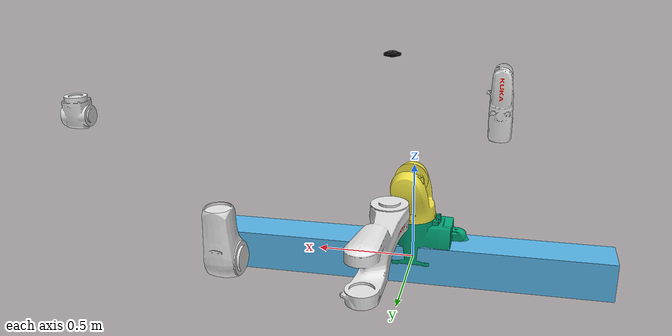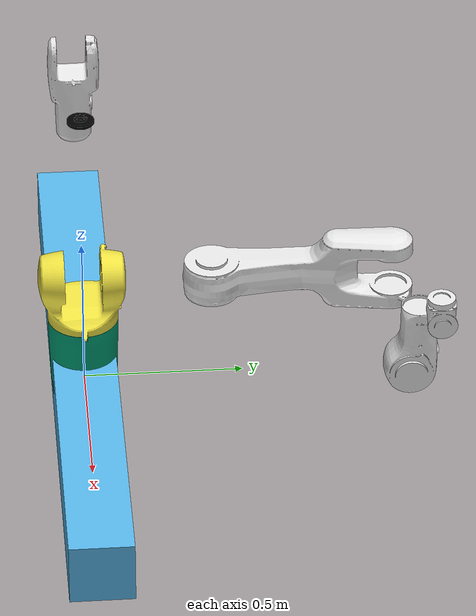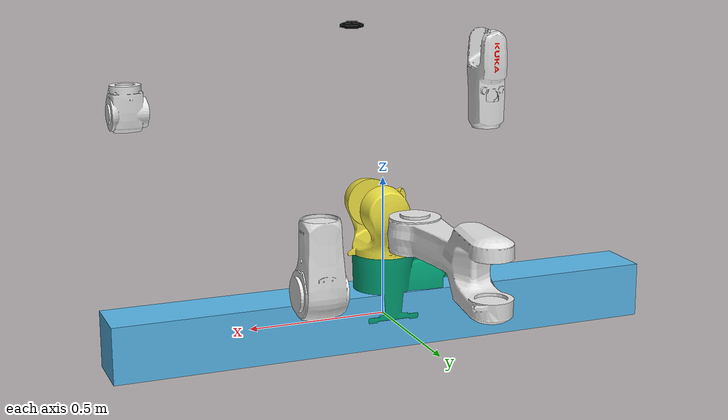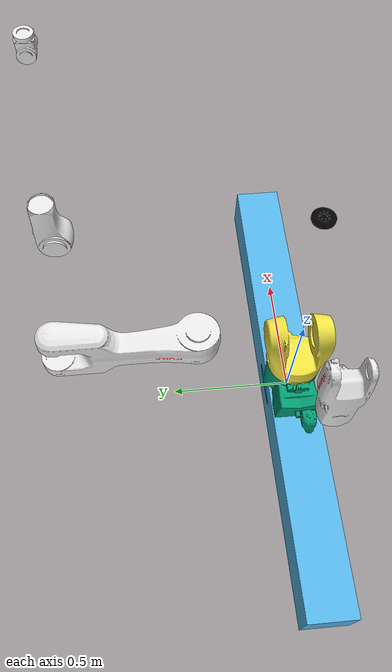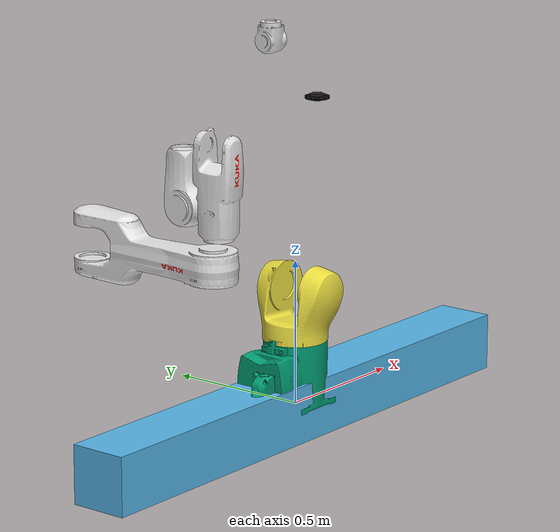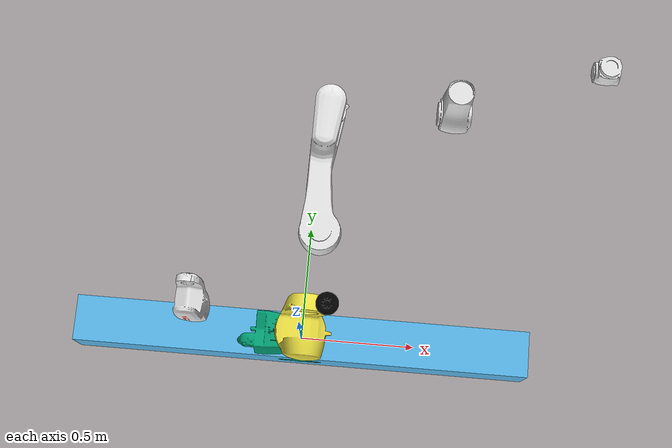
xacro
<?xml version="1.0"?>
<robot xmlns:xacro="http://www.ros.org/wiki/xacro" name="kr10_r1100_2_with_dummy_rail">
  <!-- Import urdf file  -->
  <xacro:include filename="$(find kuka_agilus_support)/urdf/kr10_r1100_2_macro.xacro"/>
  <xacro:include filename="$(find kuka_agilus_support)/urdf/kr_agilus_ros2_control_macro.xacro"/>
  <xacro:include filename="$(find ext_axis_examples)/urdf/dummy_rail.xacro"/>
  <!-- Read additional arguments  -->
  <xacro:arg name="driver_version" default="rsi_only"/>
  <xacro:arg name="mode" default="hardware"/>
  <xacro:arg name="use_gpio" default="false"/>
  <xacro:arg name="roundtrip_time" default="0"/>
  <xacro:arg name="client_ip" default="0.0.0.0"/>
  <xacro:arg name="client_port" default="59152"/>
  <xacro:arg name="controller_ip" default="0.0.0.0"/>
  <xacro:arg name="verify_robot_model" default="true"/>
  <xacro:arg name="prefix" default=""/>
  <xacro:arg name="x" default="0"/>
  <xacro:arg name="y" default="0"/>
  <xacro:arg name="z" default="0"/>
  <xacro:arg name="roll" default="0"/>
  <xacro:arg name="pitch" default="0"/>
  <xacro:arg name="yaw" default="0"/>
  <xacro:kuka_agilus_ros2_control name="$(arg prefix)kr10_r1100_2_with_dummy_rail" driver_version="$(arg driver_version)" client_ip="$(arg client_ip)" client_port="$(arg client_port)" controller_ip="$(arg controller_ip)" prefix="$(arg prefix)" mode="$(arg mode)" use_gpio="$(arg use_gpio)" roundtrip_time="$(arg roundtrip_time)" verify_robot_model="$(arg verify_robot_model)">
    <ext_axes_ros2_control_joints>
      <xacro:dummy_rail_ros2_control_joints/>
    </ext_axes_ros2_control_joints>
  </xacro:kuka_agilus_ros2_control>
  <!-- world link -->
  <link name="world"/>
  <!-- dummy rail links -->
  <xacro:dummy_rail_links/>
  <xacro:kuka_kr10_r1100_2_robot prefix="$(arg prefix)" package_name="kuka_agilus_support"/>
  <!-- dummy rail joints -->
  <xacro:dummy_rail_joints robot_base_link="$(arg prefix)base_link">
    <origin xyz="$(arg x) $(arg y) $(arg z)" rpy="$(arg roll) $(arg pitch) $(arg yaw)"/>
  </xacro:dummy_rail_joints>
</robot>

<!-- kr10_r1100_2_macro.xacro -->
<robot xmlns:xacro="http://www.ros.org/wiki/xacro" name="kr10_r1100_2">
  <!-- include helper xacros -->
  <xacro:include filename="$(find kuka_resources)/urdf/common_materials.xacro"/>
  <xacro:macro name="kuka_kr10_r1100_2_robot" params="prefix package_name">
    <!-- links - main serial chain -->
    <link name="${prefix}base_link">
      <collision>
        <geometry>
          <mesh filename="package://${package_name}/meshes/kr10_r1100_2/collision/base_link.stl"/>
        </geometry>
        <origin rpy="-0.0 0.0 -0.0" xyz="0.0 0.0 0.0"/>
      </collision>
      <inertial>
        <inertia ixx="0.16209200415615" ixy="0.0" ixz="0.0" iyy="0.10881181598555635" iyz="0.0" izz="0.18461591505869543"/>
        <mass value="1.6916E1"/>
        <origin rpy="1.6165592773339865 -1.221289277333065 3.10031147437779" xyz="-0.03713348309292976 2.6602033577676952E-5 0.10863850792149446"/>
      </inertial>
      <visual>
        <geometry>
          <mesh filename="package://${package_name}/meshes/kr10_r1100_2/visual/base_link.stl"/>
        </geometry>
        <origin rpy="-0.0 0.0 -0.0" xyz="0.0 0.0 0.0"/>
        <xacro:material_kuka_ral_pure_white/>
      </visual>
    </link>
    <link name="${prefix}link_1">
      <collision>
        <geometry>
          <mesh filename="package://${package_name}/meshes/kr10_r1100_2/collision/link_1.stl"/>
        </geometry>
        <origin rpy="-0.0 0.0 -0.0" xyz="0.0 0.0 0.0"/>
      </collision>
      <inertial>
        <inertia ixx="0.07406183855390855" ixy="0.0" ixz="0.0" iyy="0.0890478351825312" iyz="0.0" izz="0.11039570662759429"/>
        <mass value="8.4159999999999986E0"/>
        <origin rpy="1.304519343134156 -0.9428616016893947 -1.4226510948637578" xyz="0.006410408745247152 -0.01626805370722434 -0.10658893773764262"/>
      </inertial>
      <visual>
        <geometry>
          <mesh filename="package://${package_name}/meshes/kr10_r1100_2/visual/link_1.stl"/>
        </geometry>
        <origin rpy="-0.0 0.0 -0.0" xyz="0.0 0.0 0.0"/>
        <xacro:material_kuka_ral_pure_white/>
      </visual>
    </link>
    <link name="${prefix}link_2">
      <collision>
        <geometry>
          <mesh filename="package://${package_name}/meshes/kr10_r1100_2/collision/link_2.stl"/>
        </geometry>
        <origin rpy="-0.0 0.0 -0.0" xyz="0.0 0.0 0.0"/>
      </collision>
      <inertial>
        <inertia ixx="0.8751595055066254" ixy="0.0" ixz="0.0" iyy="0.09215049446198915" iyz="0.0" izz="0.9157117764876721"/>
        <mass value="1.78369E1"/>
        <origin rpy="1.9524873827550635 -1.5422358773344043 -0.3902815673307173" xyz="0.191160133767639 -0.004651344123698628 -0.07520541854245974"/>
      </inertial>
      <visual>
        <geometry>
          <mesh filename="package://${package_name}/meshes/kr10_r1100_2/visual/link_2.stl"/>
        </geometry>
        <origin rpy="-0.0 0.0 -0.0" xyz="0.0 0.0 0.0"/>
        <xacro:material_kuka_ral_pure_white/>
      </visual>
    </link>
    <link name="${prefix}link_3">
      <collision>
        <geometry>
          <mesh filename="package://${package_name}/meshes/kr10_r1100_2/collision/link_3.stl"/>
        </geometry>
        <origin rpy="-0.0 0.0 -0.0" xyz="0.0 0.0 0.0"/>
      </collision>
      <inertial>
        <inertia ixx="0.04469381119929391" ixy="0.0" ixz="0.0" iyy="0.018969508933922696" iyz="0.0" izz="0.0498412586885908"/>
        <mass value="6.075E0"/>
        <origin rpy="-2.676930368410595 -1.321895859309871 1.1860920267202666" xyz="0.04386106995884774 -0.012506995884773664 -0.06825142386831277"/>
      </inertial>
      <visual>
        <geometry>
          <mesh filename="package://${package_name}/meshes/kr10_r1100_2/visual/link_3.stl"/>
        </geometry>
        <origin rpy="-0.0 0.0 -0.0" xyz="0.0 0.0 0.0"/>
        <xacro:material_kuka_ral_pure_white/>
      </visual>
    </link>
    <link name="${prefix}link_4">
      <collision>
        <geometry>
          <mesh filename="package://${package_name}/meshes/kr10_r1100_2/collision/link_4.stl"/>
        </geometry>
        <origin rpy="-0.0 0.0 -0.0" xyz="0.0 0.0 0.0"/>
      </collision>
      <inertial>
        <inertia ixx="0.012301413884477554" ixy="0.0" ixz="0.0" iyy="0.08469612193319441" iyz="0.0" izz="0.08739834186747329"/>
        <mass value="5.1623807059999995E0"/>
        <origin rpy="-2.228094247436686 -1.5326119469267911 2.179783954730353" xyz="0.0013191433102012267 0.008607757626765767 -0.14098161935749579"/>
      </inertial>
      <visual>
        <geometry>
          <mesh filename="package://${package_name}/meshes/kr10_r1100_2/visual/link_4.stl"/>
        </geometry>
        <origin rpy="-0.0 0.0 -0.0" xyz="0.0 0.0 0.0"/>
        <xacro:material_kuka_ral_pure_white/>
      </visual>
    </link>
    <link name="${prefix}link_5">
      <collision>
        <geometry>
          <mesh filename="package://${package_name}/meshes/kr10_r1100_2/collision/link_5.stl"/>
        </geometry>
        <origin rpy="-0.0 0.0 -0.0" xyz="0.0 0.0 0.0"/>
      </collision>
      <inertial>
        <inertia ixx="0.0017317756133102904" ixy="0.0" ixz="0.0" iyy="0.002219500805440681" iyz="0.0" izz="0.002467090055442975"/>
        <mass value="1.6128E0"/>
        <origin rpy="1.567898714902774 -0.8611716764868309 -3.100280255900493" xyz="0.009320696924603175 7.83482142857143E-4 -0.026462549603174602"/>
      </inertial>
      <visual>
        <geometry>
          <mesh filename="package://${package_name}/meshes/kr10_r1100_2/visual/link_5.stl"/>
        </geometry>
        <origin rpy="-0.0 0.0 -0.0" xyz="0.0 0.0 0.0"/>
        <xacro:material_kuka_ral_pure_white/>
      </visual>
    </link>
    <link name="${prefix}link_6">
      <collision>
        <geometry>
          <mesh filename="package://${package_name}/meshes/kr10_r1100_2/collision/link_6.stl"/>
        </geometry>
        <origin rpy="-0.0 0.0 -0.0" xyz="0.0 0.0 0.0"/>
      </collision>
      <inertial>
        <inertia ixx="1.83698267603013E-4" ixy="0.0" ixz="0.0" iyy="1.8213621766783165E-4" iyz="0.0" izz="2.9589000000000004E-4"/>
        <mass value="7.34E-1"/>
        <origin rpy="0.0 -0.0 1.223427188696551" xyz="0.0 0.0 -0.011764604904632152"/>
      </inertial>
      <visual>
        <geometry>
          <mesh filename="package://${package_name}/meshes/kr10_r1100_2/visual/link_6.stl"/>
        </geometry>
        <origin rpy="-0.0 0.0 -0.0" xyz="0.0 0.0 0.0"/>
        <xacro:material_kuka_ral_pure_white/>
      </visual>
    </link>
    <!-- joints - main serial chain -->
    <joint name="${prefix}joint_1" type="revolute">
      <axis xyz="0.0 0.0 1.0"/>
      <child link="${prefix}link_1"/>
      <limit effort="288.36" lower="-2.9670597283903604E0" upper="2.9670597283903604E0" velocity="${radians(300)}"/>
      <origin rpy="-3.141592653589793 0.0 -0.0" xyz="0.0 0.0 0.0"/>
      <parent link="${prefix}base_link"/>
    </joint>
    <joint name="${prefix}joint_2" type="revolute">
      <axis xyz="0.0 0.0 1.0"/>
      <child link="${prefix}link_2"/>
      <limit effort="311.954897896674" lower="-3.3161255787892263E0" upper="7.853981633974483E-1" velocity="${radians(225)}"/>
      <origin rpy="1.5707963267948963 0.0 -0.0" xyz="0.025 0.0 -0.4"/>
      <parent link="${prefix}link_1"/>
    </joint>
    <joint name="${prefix}joint_3" type="revolute">
      <axis xyz="0.0 0.0 1.0"/>
      <child link="${prefix}link_3"/>
      <limit effort="119.76245366275" lower="-2.0943951023931953E0" upper="2.722713633111154E0" velocity="${radians(330)}"/>
      <origin rpy="0.0 0.0 -1.5707963267948963" xyz="0.56 0.0 0.0"/>
      <parent link="${prefix}link_2"/>
    </joint>
    <joint name="${prefix}joint_4" type="revolute">
      <axis xyz="0.0 0.0 1.0"/>
      <child link="${prefix}link_4"/>
      <limit effort="46.081304845791" lower="-3.2288591161895095E0" upper="3.2288591161895095E0" velocity="${radians(360)}"/>
      <origin rpy="1.5707963267948963 0.0 -0.0" xyz="0.025 0.0 0.0"/>
      <parent link="${prefix}link_3"/>
    </joint>
    <joint name="${prefix}joint_5" type="revolute">
      <axis xyz="0.0 0.0 1.0"/>
      <child link="${prefix}link_5"/>
      <limit effort="41.6154671315968" lower="-2.0943951023931953E0" upper="2.0943951023931953E0" velocity="${radians(360)}"/>
      <origin rpy="-1.5707963267948963 0.0 -0.0" xyz="0.0 0.0 -0.515"/>
      <parent link="${prefix}link_4"/>
    </joint>
    <joint name="${prefix}joint_6" type="revolute">
      <axis xyz="0.0 0.0 1.0"/>
      <child link="${prefix}link_6"/>
      <limit effort="28.03794" lower="-6.1086523819801535E0" upper="6.1086523819801535E0" velocity="${radians(433)}"/>
      <origin rpy="1.5707963267948963 0.0 -0.0" xyz="0.0 0.0 0.0"/>
      <parent link="${prefix}link_5"/>
    </joint>
    <!-- ROS-Industrial 'base' frame - equivalent of 'KUKA ROBROOT'-->
    <link name="${prefix}base"/>
    <joint name="${prefix}base_link-base" type="fixed">
      <origin xyz="0 0 0" rpy="0 0 0"/>
      <parent link="${prefix}base_link"/>
      <child link="${prefix}base"/>
    </joint>
    <!-- ROS-Industrial 'flange' frame - attachment point for EEF models -->
    <link name="${prefix}flange"/>
    <joint name="${prefix}link6-flange" type="fixed">
      <child link="${prefix}flange"/>
      <origin rpy="0 ${pi/2} -0.0" xyz="0.0 0.0 -0.09"/>
      <parent link="${prefix}link_6"/>
    </joint>
    <!-- ROS-Industrial 'tool0' frame - all-zeros tool frame -->
    <link name="${prefix}tool0"/>
    <joint name="${prefix}link6-tool0" type="fixed">
      <child link="${prefix}tool0"/>
      <origin rpy="0 ${pi} -0.0" xyz="0.0 0.0 -0.09"/>
      <parent link="${prefix}link_6"/>
    </joint>
  </xacro:macro>
</robot>

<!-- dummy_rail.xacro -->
<robot xmlns:xacro="http://www.ros.org/wiki/xacro">
  <xacro:include filename="$(find kuka_resources)/urdf/common_materials.xacro"/>
  <xacro:macro name="dummy_rail_links" params="">
    <!-- links -->
    <link name="rail_link">
      <visual>
        <geometry>
          <box size="2 0.2 0.2"/>
        </geometry>
        <xacro:material_kuka_black/>
      </visual>
    </link>
  </xacro:macro>
  <xacro:macro name="dummy_rail_joints" params="robot_base_link *origin">
    <!-- joints -->
    <joint name="world-rail_link" type="fixed">
      <parent link="world"/>
      <child link="rail_link"/>
      <xacro:insert_block name="origin"/>
    </joint>
    <joint name="rail_joint" type="prismatic">
      <parent link="rail_link"/>
      <child link="${robot_base_link}"/>
      <origin rpy="0.0 0.0 0.0" xyz="0.0 0.0 0.0"/>
      <axis xyz="1 0 0"/>
      <limit lower="-1" upper="1" effort="100.0" velocity="1.0"/>
    </joint>
  </xacro:macro>
  <xacro:macro name="dummy_rail_ros2_control_joints" params="">
    <!-- ros2 control joints -->
    <joint name="rail_joint">
      <command_interface name="position"/>
      <state_interface name="position">
        <param name="initial_value">0.0</param>
      </state_interface>
    </joint>
  </xacro:macro>
  <xacro:macro name="dummy_rail_srdf_adjacent_links" params="">
    <!-- adjacent links -->
    <disable_collisions link1="rail_link" link2="base_link" reason="Adjacent"/>
  </xacro:macro>
  <xacro:macro name="dummy_rail_srdf_joints" params="">
    <!-- srdf joints TODO remove redundancy -->
    <joint name="rail_joint" value="0"/>
  </xacro:macro>
</robot>
